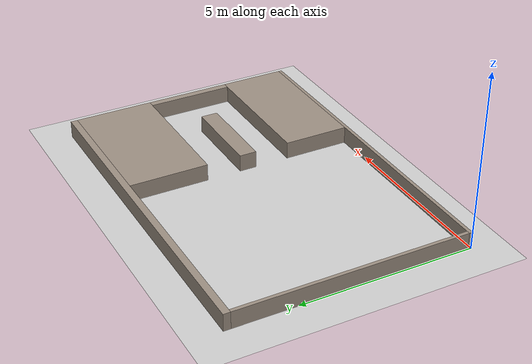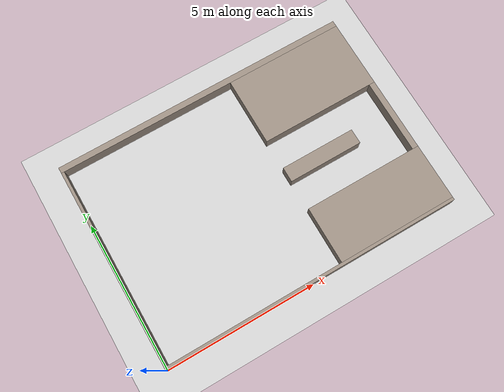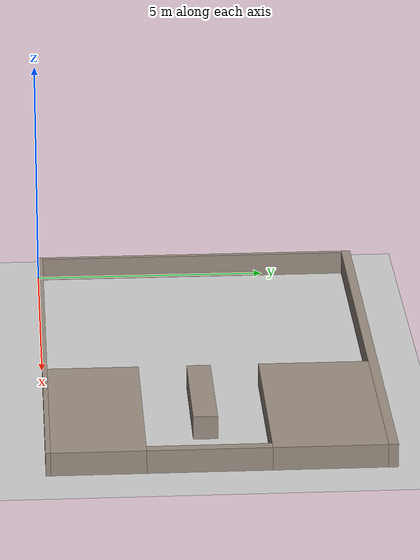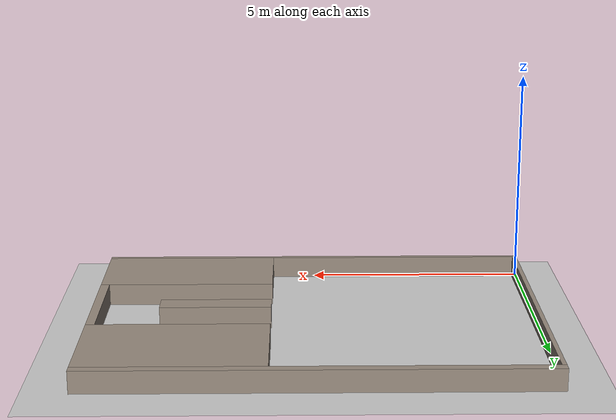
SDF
<?xml version="1.0" ?>
<sdf version="1.8">
  <world name="bolsao">
    <physics name="1ms" type="ignored"><max_step_size>0.001</max_step_size><real_time_factor>1.0</real_time_factor></physics>
    <plugin filename="gz-sim-physics-system" name="gz::sim::systems::Physics"/>
    <plugin filename="gz-sim-user-commands-system" name="gz::sim::systems::UserCommands"/>
    <plugin filename="gz-sim-scene-broadcaster-system" name="gz::sim::systems::SceneBroadcaster"/>
    <plugin filename="gz-sim-sensors-system" name="gz::sim::systems::Sensors"><render_engine>ogre2</render_engine></plugin>
    <light type="directional" name="sun">
      <cast_shadows>false</cast_shadows>
      <pose>0 0 10 0 0 0</pose>
      <diffuse>0.9 0.9 0.9 1</diffuse>
      <direction>-0.3 0.2 -0.9</direction>
    </light>
    <model name="ground_plane">
      <static>true</static>
      <link name="link">
        <collision name="col"><geometry><plane><normal>0 0 1</normal><size>100 100</size></plane></geometry></collision>
        <visual name="vis"><geometry><plane><normal>0 0 1</normal><size>100 100</size></plane></geometry>
          <material><ambient>0.8 0.8 0.8 1</ambient><diffuse>0.8 0.8 0.8 1</diffuse></material></visual>
      </link>
    </model>

    <model name="wall_0">
      <static>true</static>
      <pose>8.000 5.650 0.250 0 0 0</pose>
      <link name="link">
        <collision name="col">
          <geometry><box><size>4.000 2.300 0.500</size></box></geometry>
        </collision>
        <visual name="vis">
          <geometry><box><size>4.000 2.300 0.500</size></box></geometry>
          <material><ambient>0.6 0.55 0.5 1</ambient><diffuse>0.6 0.55 0.5 1</diffuse></material>
        </visual>
      </link>
    </model>
    <model name="wall_1">
      <static>true</static>
      <pose>5.000 6.900 0.250 0 0 0</pose>
      <link name="link">
        <collision name="col">
          <geometry><box><size>10.000 0.200 0.500</size></box></geometry>
        </collision>
        <visual name="vis">
          <geometry><box><size>10.000 0.200 0.500</size></box></geometry>
          <material><ambient>0.6 0.55 0.5 1</ambient><diffuse>0.6 0.55 0.5 1</diffuse></material>
        </visual>
      </link>
    </model>
    <model name="wall_2">
      <static>true</static>
      <pose>5.000 0.050 0.250 0 0 0</pose>
      <link name="link">
        <collision name="col">
          <geometry><box><size>10.000 0.100 0.500</size></box></geometry>
        </collision>
        <visual name="vis">
          <geometry><box><size>10.000 0.100 0.500</size></box></geometry>
          <material><ambient>0.6 0.55 0.5 1</ambient><diffuse>0.6 0.55 0.5 1</diffuse></material>
        </visual>
      </link>
    </model>
    <model name="wall_3">
      <static>true</static>
      <pose>0.050 3.450 0.250 0 0 0</pose>
      <link name="link">
        <collision name="col">
          <geometry><box><size>0.100 6.700 0.500</size></box></geometry>
        </collision>
        <visual name="vis">
          <geometry><box><size>0.100 6.700 0.500</size></box></geometry>
          <material><ambient>0.6 0.55 0.5 1</ambient><diffuse>0.6 0.55 0.5 1</diffuse></material>
        </visual>
      </link>
    </model>
    <model name="wall_4">
      <static>true</static>
      <pose>8.000 1.050 0.250 0 0 0</pose>
      <link name="link">
        <collision name="col">
          <geometry><box><size>4.000 1.900 0.500</size></box></geometry>
        </collision>
        <visual name="vis">
          <geometry><box><size>4.000 1.900 0.500</size></box></geometry>
          <material><ambient>0.6 0.55 0.5 1</ambient><diffuse>0.6 0.55 0.5 1</diffuse></material>
        </visual>
      </link>
    </model>
    <model name="wall_5">
      <static>true</static>
      <pose>9.900 3.250 0.250 0 0 0</pose>
      <link name="link">
        <collision name="col">
          <geometry><box><size>0.200 2.500 0.500</size></box></geometry>
        </collision>
        <visual name="vis">
          <geometry><box><size>0.200 2.500 0.500</size></box></geometry>
          <material><ambient>0.6 0.55 0.5 1</ambient><diffuse>0.6 0.55 0.5 1</diffuse></material>
        </visual>
      </link>
    </model>
    <model name="wall_6">
      <static>true</static>
      <pose>7.250 3.250 0.250 0 0 0</pose>
      <link name="link">
        <collision name="col">
          <geometry><box><size>2.500 0.500 0.500</size></box></geometry>
        </collision>
        <visual name="vis">
          <geometry><box><size>2.500 0.500 0.500</size></box></geometry>
          <material><ambient>0.6 0.55 0.5 1</ambient><diffuse>0.6 0.55 0.5 1</diffuse></material>
        </visual>
      </link>
    </model>
  </world>
</sdf>
